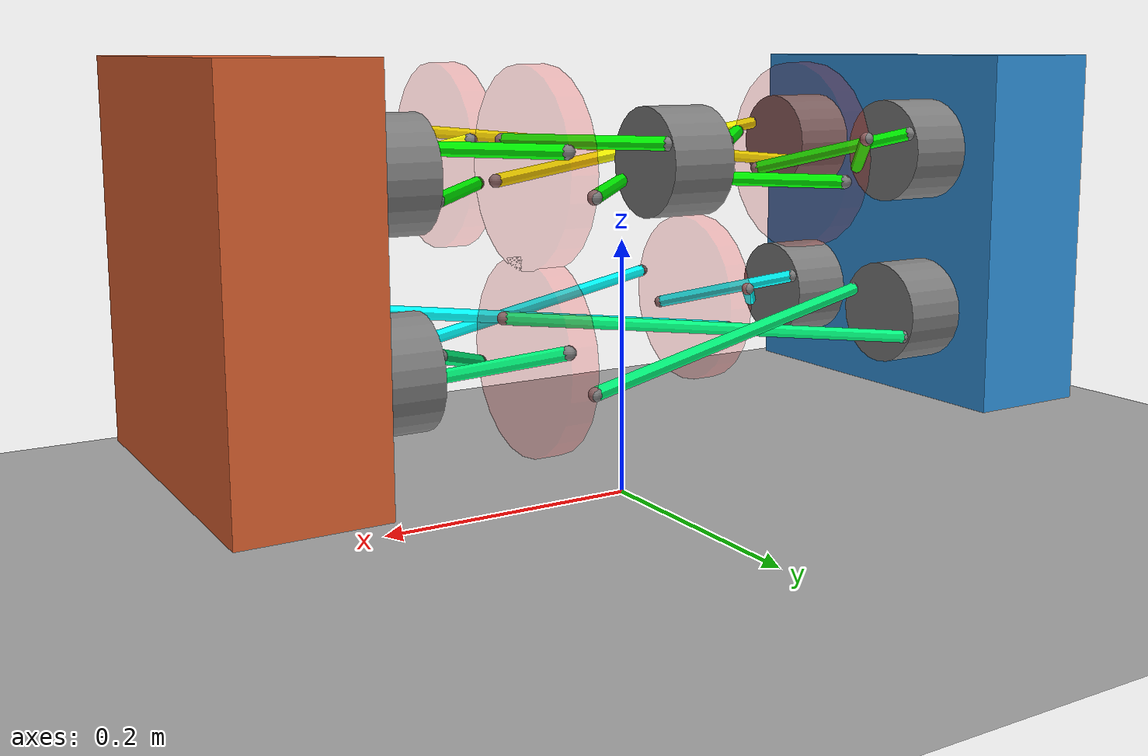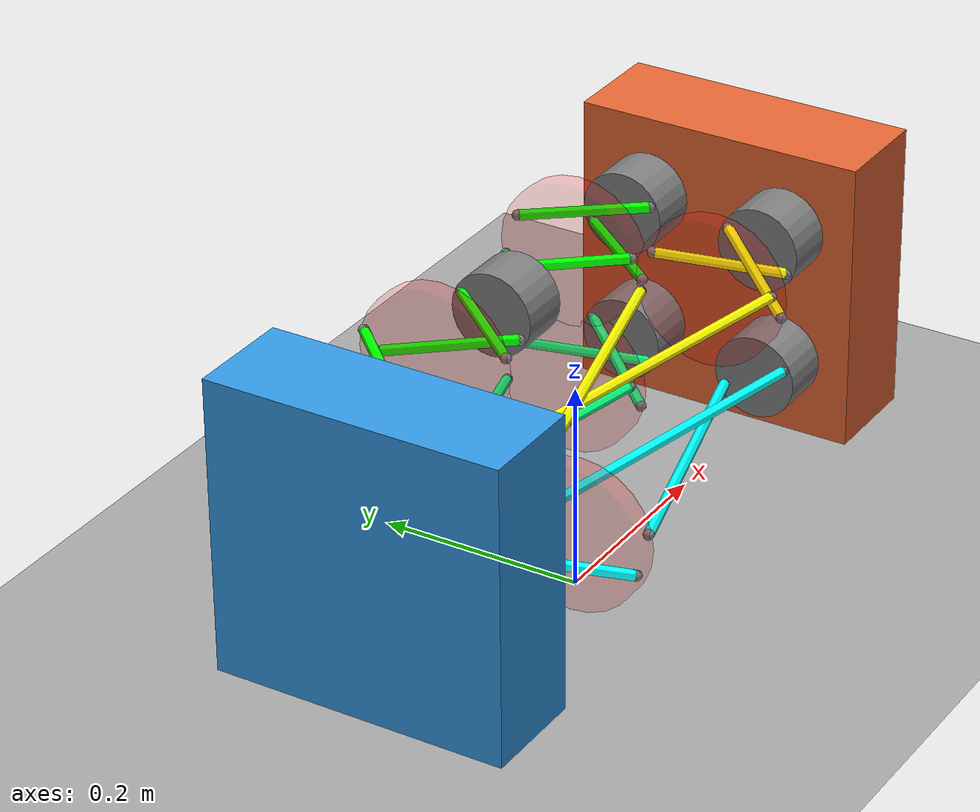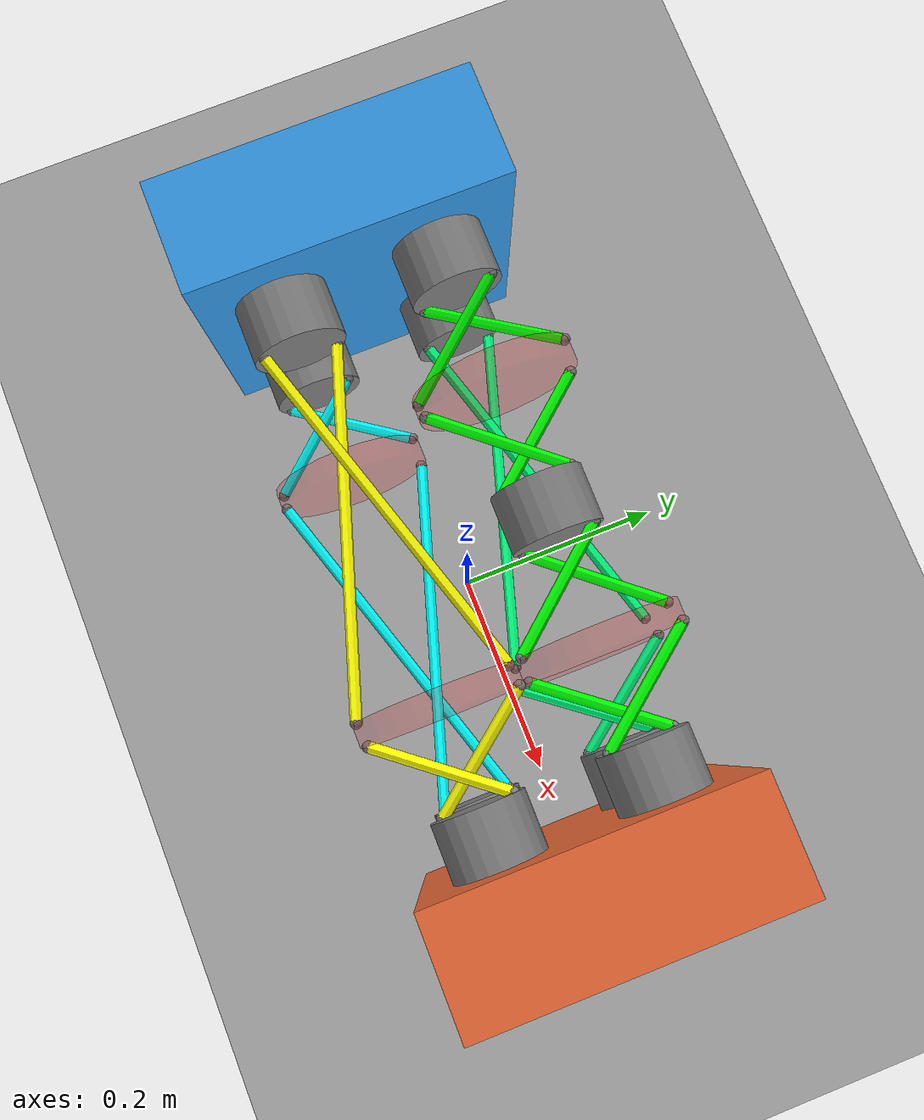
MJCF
<mujoco model="chained_actuator">
  <option timestep="0.001"/>
  <size njmax="200" nconmax="100"/>

  <asset>
    <texture name="grid" type="2d" builtin="checker" width="300" height="300"
             rgb1="0.8 0.8 0.8" rgb2="0.5 0.5 0.5" mark="edge" markrgb="0.2 0.2 0.2"/>
    <material name="gridmat" texture="grid" texrepeat="5 5" reflectance="0.1"/>
  </asset>

  <worldbody>
    <geom name="floor" type="plane" size="5 5 0.1" material="gridmat" friction="0.2 0.02 0.01"/>

    <!-- Block A -->
    <body name="block_a" pos="-0.3 0 0.2">
      <freejoint/>
      <geom type="box" size="0.05 0.14 0.14" density="480" friction="0.2 0.02 0.01" rgba="0.2 0.6 0.9 1"/>

      <!-- Cable 1 A -->
      <body name="spring_1a" pos="0.05 0.07 0.065">
        <joint name="spring1a_hinge" type="hinge" axis="1 0 0" limited="true" range="0 3.14"/>
        <geom type="cylinder" fromto="0 0 0 0.05 0 0" size="0.04" density="150" />

        <site name="siteM1a1" pos="0.05 0.03 0.015"/>
        <site name="siteM1a2" pos="0.05 -0.03 -0.015"/>
      </body>

      <!-- Cable 1 B -->
      <body name="spring_1b" pos="0.175 0.07 0.065">
        <geom name="spring_1b_collision" type="cylinder" fromto="0 0 0 0.02 0 0" size="0.07" density="150" rgba="1 0 0 0.1" contype="0" conaffinity="0"/>
        <joint name="spring1b_hinge" type="hinge" axis="1 0 0"/>
        <site name="siteM1b1" pos="0 -0.065 -0.015"/>
        <site name="siteM1b2" pos="0 0.065 0.015"/>

        <site name="siteM1b3" pos="0.02 -0.065 0.015"/>
        <site name="siteM1b4" pos="0.02 0.065 -0.015"/>
      </body>

      <!-- Cable 1 C -->
      <body name="spring_1c" pos="0.275 0.07 0.065">
        <joint name="spring1c_hinge" type="hinge" axis="1 0 0"/>
        <geom type="cylinder" fromto="0 0 0 0.05 0 0" size="0.04" density="150" />

        <site name="siteM1c1" pos="0 0.03 0.015"/>
        <site name="siteM1c2" pos="0 -0.03 -0.015"/>

        <site name="siteM1c3" pos="0.05 0.03 0.015"/>
        <site name="siteM1c4" pos="0.05 -0.03 -0.015"/>
      </body>

      <!-- Cable 2 C-->
      <body name="spring_2c" pos="0.05 -0.07 0.065">
        <joint name="spring2c_hinge" type="hinge" axis="1 0 0"/>
        <geom type="cylinder" fromto="0 0 0 0.05 0 0" size="0.04" density="150"/>

        <site name="siteM2c1" pos="0.05 0.03 -0.015"/>
        <site name="siteM2c2" pos="0.05 -0.03 0.015"/>
      </body>

      <!-- Cable 3 A -->
      <body name="spring_3a" pos="0.05 -0.07 -0.065">
        <joint name="spring3a_hinge" type="hinge" axis="1 0 0" limited="true" range="0 3.14"/>
        <geom type="cylinder" fromto="0 0 0 0.05 0 0" size="0.04" density="150"/>

        <site name="siteM3a1" pos="0.05 0.03 0.015"/>
        <site name="siteM3a2" pos="0.05 -0.03 -0.015"/>

      </body>

      <!-- Cable 3 B-->
      <body name="spring_3b" pos="0.175 -0.07 -0.065">

        <geom name="spring_3b_collision" type="cylinder" fromto="0 0 0 0.02 0 0" size="0.07" density="150" rgba="1 0 0 0.1" contype="0" conaffinity="0"/>
        <joint name="spring3b_hinge" type="hinge" axis="1 0 0"/>
        <site name="siteM3b1" pos="0.0 -0.065 -0.015"/>
        <site name="siteM3b2" pos="0.0 0.065 0.015"/>

        <site name="siteM3b3" pos="0.02 -0.065 0.015"/>
        <site name="siteM3b4" pos="0.02 0.065 -0.015"/>
      </body>

      <!-- Cable 4 C-->
      <body name="spring_4c" pos="0.05 0.07 -0.065">
        <geom type="cylinder" fromto="0 0 0 0.05 0 0" size="0.04" density="150"/>
        <joint name="spring4c_hinge" type="hinge" axis="1 0 0"/>
        <site name="siteM4c1" pos="0.05 0.03 -0.015"/>
        <site name="siteM4c2" pos="0.05 -0.03 0.015"/>
      </body>

    </body>

    <!-- Block B -->
    <body name="block_b" pos="0.3 0 0.2">
      <freejoint/>
      <geom type="box" size="0.05 0.14 0.14" density="480" friction="0.2 0.02 0.01" rgba="0.9 0.4 0.2 1"/>

      <!-- Cable 1 D  -->
      <body name="spring_1d" pos="-0.175 0.07 0.065">
        <geom name="spring_1d_collision" type="cylinder" fromto="0 0 0 -0.02 0 0" size="0.07" density="150" rgba="1 0 0 0.1" contype="0" conaffinity="0"/>
        <joint name="spring1d_hinge" type="hinge" axis="1 0 0"/>
        <site name="siteM1d1" pos="0 -0.065 -0.015"/>
        <site name="siteM1d2" pos="0 0.065 0.015"/>

        <site name="siteM1d3" pos="-0.02 -0.065 0.015"/>
        <site name="siteM1d4" pos="-0.02 0.065 -0.015"/>
      </body>

      <!-- Cable 1 E-->
      <body name="spring_1e" pos="-0.05 0.07 0.065">
        <geom type="cylinder" fromto="0 0 0 -0.05 0 0" size="0.04" density="150"/>
        <joint name="spring1e_hinge" type="hinge" axis="1 0 0"/>
        <site name="siteM1e1" pos="-0.05 0.03 -0.015"/>
        <site name="siteM1e2" pos="-0.05 -0.03 0.015"/>
      </body>

      <!-- Cable 3 C-->
      <body name="spring_3c" pos="-0.05 -0.07 -0.065">
        <geom type="cylinder" fromto="0 0 0 -0.05 0 0" size="0.04" density="150"/>
        <joint name="spring3c_hinge" type="hinge" axis="1 0 0"/>
        <site name="siteM3c1" pos="-0.05 0.03 -0.015"/>
        <site name="siteM3c2" pos="-0.05 -0.03 0.015"/>
      </body>

      <!-- Cable 2 A -->
      <body name="spring_2a" pos="-0.05 -0.07 0.065">
        <joint name="spring2a_hinge" type="hinge" axis="1 0 0" limited="true" range="-3.14 0"/>
        <geom type="cylinder" fromto="0 0 0 -0.05 0 0" size="0.04" density="150"/>

        <site name="siteM2a1" pos="-0.05 0.03 0.015"/>
        <site name="siteM2a2" pos="-0.05 -0.03 -0.015"/>
      </body>
      <!-- Cable 2 B -->

      <body name="spring_2b" pos="-0.175 -0.07 0.065">
         <geom name="spring_2b_collision" type="cylinder" fromto="0 0 0 -0.02 0 0" size="0.07" density="150" rgba="1 0 0 0.1" contype="0" conaffinity="0"/>
        <joint name="spring2b_hinge" type="hinge" axis="1 0 0"/>
        <site name="siteM2b1" pos="0 -0.065 -0.015"/>
        <site name="siteM2b2" pos="0 0.065 0.015"/>

        <site name="siteM2b3" pos="-0.02 -0.065 0.015"/>
        <site name="siteM2b4" pos="-0.02 0.065 -0.015"/>
      </body>

      <!-- Cable 4 A -->
      <body name="spring_4a" pos="-0.05 0.07 -0.065">
        <joint name="spring4a_hinge" type="hinge" axis="1 0 0" limited="true" range="-3.14 0" />
        <geom type="cylinder" fromto="0 0 0 -0.05 0 0" size="0.04" density="150"/>

        <site name="siteM4a1" pos="-0.05 0.03 0.015"/>
        <site name="siteM4a2" pos="-0.05 -0.03 -0.015"/>
      </body>

      <!-- Cable 4 B -->
      <body name="spring_4b" pos="-0.175 0.07 -0.065">
         <geom name="spring_4b_collision" type="cylinder" fromto="0 0 0 -0.02 0 0" size="0.07" density="150" rgba="1 0 0 0.1" contype="0"/>
        <joint name="spring4b_hinge" type="hinge" axis="1 0 0"/>
        <site name="siteM4b1" pos="0 -0.065 -0.015"/>
        <site name="siteM4b2" pos="0 0.065 0.015"/>

        <site name="siteM4b3" pos="-0.02 -0.065 0.015"/>
        <site name="siteM4b4" pos="-0.02 0.065 -0.015"/>
      </body>

    </body>
  </worldbody>

  <actuator>
    <position name="spring1a_motor" joint="spring1a_hinge" kp="10" ctrlrange="0 3.14"/>
    <position name="spring2a_motor" joint="spring2a_hinge" kp="10" ctrlrange="-3.14 0"/>
    <position name="spring3a_motor" joint="spring3a_hinge" kp="10" ctrlrange="0 3.14"/>
    <position name="spring4a_motor" joint="spring4a_hinge" kp="10" ctrlrange="-3.14 0"/>

    <position name="spring1e_motor" joint="spring1e_hinge" kp="10" ctrlrange="-3.14 0"/>
    <position name="spring2c_motor" joint="spring2c_hinge" kp="10" ctrlrange="0 3.14"/>
    <position name="spring3c_motor" joint="spring3c_hinge" kp="10" ctrlrange="-3.14 0"/>
    <position name="spring4c_motor" joint="spring4c_hinge" kp="10" ctrlrange="0 3.14"/>
  </actuator>

  <tendon>
    <spatial name="inter1a1" width="0.005" rgba="0 1 0 1" stiffness="3000" damping="15">
        <site site="siteM1a1"/>
        <site site="siteM1b1"/>
    </spatial>
    <spatial name="inter1a2" width="0.005" rgba="0 1 0 1" stiffness="3000" damping="15">
        <site site="siteM1a2"/>
        <site site="siteM1b2"/>
    </spatial>
      <spatial name="inter1b1" width="0.005" rgba="0 1 0 1" stiffness="3000" damping="15">
        <site site="siteM1b3"/>
        <site site="siteM1c1"/>
    </spatial>
        <spatial name="inter1b2" width="0.005" rgba="0 1 0 1" stiffness="3000" damping="15">
        <site site="siteM1b4"/>
        <site site="siteM1c2"/>
    </spatial>

        <spatial name="inter1c1" width="0.005" rgba="0 1 0 1" stiffness="3000" damping="15">
        <site site="siteM1c3"/>
        <site site="siteM1d3"/>
    </spatial>

        <spatial name="inter1c2" width="0.005" rgba="0 1 0 1" stiffness="3000" damping="15">
        <site site="siteM1c4"/>
        <site site="siteM1d4"/>
    </spatial>
    <spatial name="inter1d1" width="0.005" rgba="0 1 0 1" stiffness="3000" damping="15">
        <site site="siteM1d1"/>
        <site site="siteM1e1"/>
    </spatial>
    <spatial name="inter1d2" width="0.005" rgba="0 1 0 1" stiffness="3000" damping="15">
        <site site="siteM1d2"/>
        <site site="siteM1e2"/>
    </spatial>

    <spatial name="inter2a1" width="0.005" rgba="1 1 0 1" stiffness="3000" damping="15">
        <site site="siteM2a1"/>
        <site site="siteM2b1"/>
    </spatial>
    <spatial name="inter2a2" width="0.005" rgba="1 1 0 1" stiffness="3000" damping="15">
        <site site="siteM2a2"/>
        <site site="siteM2b2"/>
    </spatial>
    <spatial name="inter2b1" width="0.005" rgba="1 1 0 1" stiffness="3000" damping="15">
        <site site="siteM2b3"/>
        <site site="siteM2c1"/>
    </spatial>
    <spatial name="inter2b2" width="0.005" rgba="1 1 0 1" stiffness="3000" damping="15">
        <site site="siteM2b4"/>
        <site site="siteM2c2"/>
    </spatial>

    <spatial name="inter3a1" width="0.005" rgba="0 1 1 1" stiffness="3000" damping="15">
        <site site="siteM3a1"/>
        <site site="siteM3b1"/>
    </spatial>
    <spatial name="inter3a2" width="0.005" rgba="0 1 1 1" stiffness="3000" damping="15">
        <site site="siteM3a2"/>
        <site site="siteM3b2"/>
    </spatial>
    <spatial name="inter3b1" width="0.005" rgba="0 1 1 1" stiffness="3000" damping="15">
        <site site="siteM3b3"/>
        <site site="siteM3c1"/>
    </spatial>
    <spatial name="inter3b2" width="0.005" rgba="0 1 1 1" stiffness="3000" damping="15">
        <site site="siteM3b4"/>
        <site site="siteM3c2"/>
    </spatial>

     <spatial name="inter4a1" width="0.005" rgba="0 1 0.5 1" stiffness="3000" damping="15">
        <site site="siteM4a1"/>
        <site site="siteM4b1"/>
    </spatial>
    <spatial name="inter4a2" width="0.005" rgba="0 1 0.5 1" stiffness="3000" damping="15">
        <site site="siteM4a2"/>
        <site site="siteM4b2"/>
    </spatial>
    <spatial name="inter4b1" width="0.005" rgba="0 1 0.5 1" stiffness="3000" damping="15">
        <site site="siteM4b3"/>
        <site site="siteM4c1"/>
    </spatial>
    <spatial name="inter4b2" width="0.005" rgba="0 1 0.5 1" stiffness="3000" damping="15">
        <site site="siteM4b4"/>
        <site site="siteM4c2"/>
    </spatial>

  </tendon>

</mujoco>
